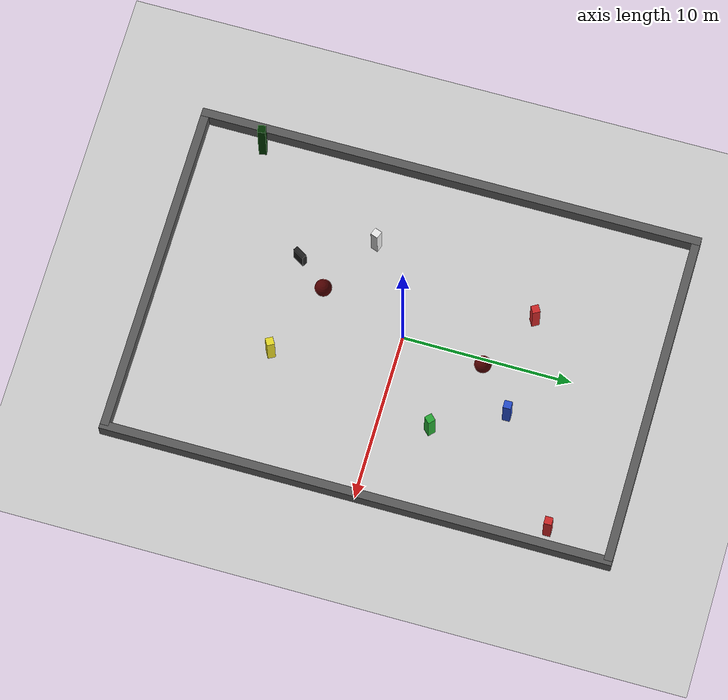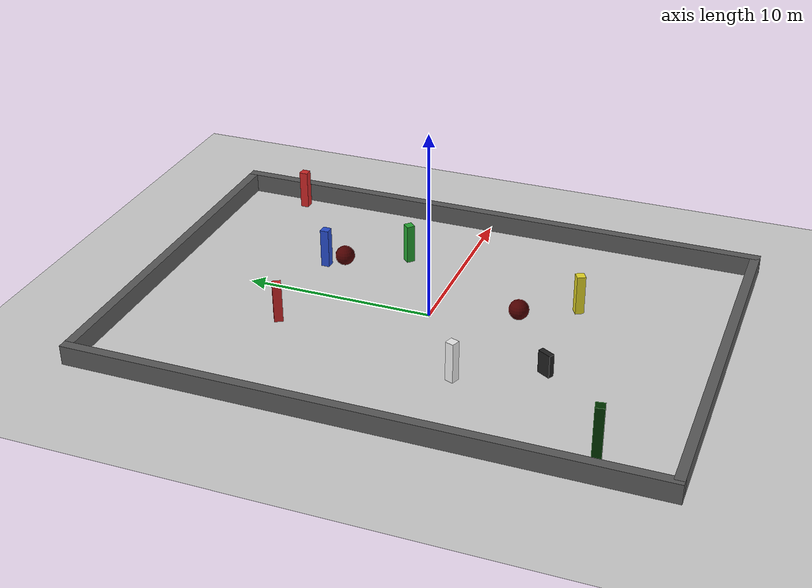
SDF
<?xml version="1.0"?>

<sdf version="1.6">
  <world name="custom_world">
    <physics name="1ms" type="ignored">
      <max_step_size>0.001</max_step_size>
      <real_time_factor>1.0</real_time_factor>
    </physics>

    <light type="directional" name="sun">
      <cast_shadows>true</cast_shadows>
      <pose>0 0 10 0 0 0</pose>
      <diffuse>0.8 0.8 0.8 1</diffuse>
      <specular>0.2 0.2 0.2 1</specular>
      <attenuation>
        <range>1000</range>
        <constant>0.9</constant>
        <linear>0.01</linear>
        <quadratic>0.001</quadratic>
      </attenuation>
      <direction>-0.5 0.1 -0.9</direction>
    </light>

    <model name="ground_plane">
      <static>true</static>
      <link name="link">
        <collision name="collision">
          <geometry>
            <plane>
              <normal>0 0 1</normal>
              <size>100 100</size>
            </plane>
          </geometry>
        </collision>
        <visual name="visual">
          <geometry>
            <plane>
              <normal>0 0 1</normal>
              <size>100 100</size>
            </plane>
          </geometry>
          <material>
            <ambient>0.8 0.8 0.8 1</ambient>
            <diffuse>0.8 0.8 0.8 1</diffuse>
            <specular>0.8 0.8 0.8 1</specular>
          </material>
        </visual>
      </link>
    </model>
<!-- modificato da noi -->

    <include>
      <uri>model://boundaries_outside</uri>
      <name>boundaries</name>
      <pose>0 0 0 0 0 0</pose>
    </include>

    <include>
        <uri>model://red_ball</uri>
        <name>ball0</name>
        <pose>1 5 2 0 0 0</pose>
    </include>

    <include>
        <uri>model://red_ball</uri>
        <name>ball1</name>
        <pose>-1 -5 2 0 0 0</pose>
    </include>

    <include>
        <uri>model://everblock_red</uri>
        <name>block1</name>
        <pose>-3 7 0 0 0 0.523598776</pose> <!-- ruotato yaw = 30 gradi -->
    </include>

    <include>
        <uri>model://everblock_blue</uri>
        <name>block2</name>
        <pose>3 7 0 0 0 0</pose> <!-- ruotato yaw = 0 gradi -->
    </include>

    <include>
        <uri>model://everblock_green</uri>
        <name>block3</name>
        <pose>5 3 0 0 0 0.785398163</pose> <!-- ruotato yaw = 45 gradi -->
    </include>

    <include>
        <uri>model://everblock_red</uri>
        <name>block4</name>
        <pose>9 11 0 0 0 4.71238898</pose><!-- ruotato yaw = 270 gradi -->
    </include>

    <include>
        <uri>model://everblock_small_black</uri>
        <name>block5</name>
        <pose>-3 -7 0 0 0 1.047197551</pose><!-- ruotato yaw = 60 gradi -->
    </include>

    <include>
        <uri>model://everblock_yellow</uri>
        <name>block6</name>
        <pose>3 -7 0 0 0 2.094395102</pose><!-- ruotato yaw = 120 gradi -->
    </include>

    <include>
        <uri>model://everblock_white</uri>
        <name>block7</name>
        <pose>-5 -3 0 0 0 4.363323130</pose><!-- ruotato yaw = 250 gradi -->
    </include>

    <include>
        <uri>model://everblock_high_green</uri>
        <name>block8</name>
        <pose>-9 -11 0 0 0 0.174532925</pose><!-- ruotato yaw = 10 gradi -->
    </include>

<!-- modificato da noi -->
  </world>
</sdf>

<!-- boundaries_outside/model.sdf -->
<sdf version="1.7">
  <model name="boundaries">

    <include>
      <uri>model://wall_big_long</uri>
      <name>boundary_up</name>
	  <pose>10 0 0 0 0 0</pose>
    </include>

    <include>
      <uri>model://wall_big_long</uri>
      <name>boundary_down</name>
      <pose>-10 0 0 0 0 0</pose>
    </include>

    <include>
      <uri>model://wall_big_short</uri>
      <name>boundary_left</name>
	  <pose>0 14.75 0 0 0 1.570796</pose>
    </include>

    <include>
      <uri>model://wall_big_short</uri>
      <name>boundary_right</name>
      <pose>0 -14.75 0 0 0 1.570796</pose>
    </include>

  </model>
</sdf>

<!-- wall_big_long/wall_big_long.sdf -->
<sdf version="1.7">

    <model name='wall'>
        <static>true</static>
        <pose>0 0 0 0 0 0</pose><!--pose relative to the world-->
        <link name='box'>
            <visual name='visual'>
                <geometry>
                    <box>
                        <size>0.5 30.0 2.0</size>
                    </box>
                </geometry>
                <!--let's add color to our link-->
                <material>
                    <ambient>0.35 0.35 0.35 1</ambient>
                    <diffuse>0.35 0.35 0.35 1</diffuse>
                    <specular>0.35 0.35 0.35 1</specular>
                </material>
            </visual>
            <collision name='collision'>
                <geometry>
                    <box>
                        <size>0.5 30.0 2.0</size>
                    </box>
                </geometry>
            </collision>
        </link>
    </model>

</sdf>

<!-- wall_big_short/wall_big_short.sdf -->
<sdf version="1.7">

    <model name='wall'>
        <static>true</static>
        <pose>0 0 0 0 0 0</pose><!--pose relative to the world-->
        <link name='box'>
            <visual name='visual'>
                <geometry>
                    <box>
                        <size>0.5 20.0 2.0</size>
                    </box>
                </geometry>
                <!--let's add color to our link-->
                <material>
                    <ambient>0.35 0.35 0.35 1</ambient>
                    <diffuse>0.35 0.35 0.35 1</diffuse>
                    <specular>0.35 0.35 0.35 1</specular>
                </material>
            </visual>
            <collision name='collision'>
                <geometry>
                    <box>
                        <size>0.5 20.0 2.0</size>
                    </box>
                </geometry>
            </collision>
        </link>
    </model>

</sdf>

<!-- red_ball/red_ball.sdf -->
<sdf version="1.7">
  <model name='red_ball'>
    <link name='link'>
      <pose>0 0 0 0 0 0</pose>
      <inertial>
        <mass>0.001</mass>
        <inertia>
          <ixx>0.0001</ixx>
          <iyy>0.0001</iyy>
          <izz>0.0001</izz>
        </inertia>
      </inertial>
      <visual name="ball_visual">
        <geometry>
          <sphere>
            <radius>0.5</radius>
          </sphere>
        </geometry>
        <material>
          <ambient>0.3 0 0 1</ambient>
          <diffuse>0.3 0 0 1</diffuse>
          <specular>0.8 0.8 0.8 1</specular>
        </material>
      </visual>
      <collision name="ball_collision">
        <geometry>
          <sphere>
            <radius>0.5</radius>
          </sphere>
        </geometry>
      </collision>
    </link>
  </model>
</sdf>
<!-- vim: set et fenc=utf-8 ff=unix sts=0 sw=2 ts=2 : -->

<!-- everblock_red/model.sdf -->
<sdf version="1.7">
  <model name="everblock_red">
    <static>true</static>
    <link name="block">
      <pose>0 0 1.0668 0 0 0</pose>
      <collision name="collision">
        <geometry>
          <box>
            <size>0.4572 0.4572 2.1336</size>
          </box>
        </geometry>
      </collision>
      <visual name="visual">
        <geometry>
          <mesh>
            <uri>model://everblock_red/meshes/block.dae</uri>
            <scale>0.4572 0.4572 2.1336</scale>
          </mesh>
	  	</geometry>
        <material>
          <script>
            <uri>model://everblock_red/materials/scripts</uri>
            <uri>model://everblock_red/materials/textures</uri>
            <name>BlockRed</name>
          </script>
        </material>
      </visual>
    </link>
  </model>
</sdf>

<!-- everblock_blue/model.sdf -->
<sdf version="1.7">
  <model name="everblock_blue">
    <static>true</static>
    <link name="block">
      <pose>0 0 1.0668 0 0 0</pose>
      <collision name="collision">
        <geometry>
          <box>
            <size>0.4572 0.4572 2.1336</size>
          </box>
        </geometry>
      </collision>
      <visual name="visual">
        <geometry>
          <mesh>
            <uri>model://everblock_blue/meshes/block.dae</uri>
            <scale>0.4572 0.4572 2.1336</scale>
          </mesh>
	  	</geometry>
        <material>
          <script>
            <uri>model://everblock_blue/materials/scripts</uri>
            <uri>model://everblock_blue/materials/textures</uri>
            <name>BlockBlue</name>
          </script>
        </material>
      </visual>
    </link>
  </model>
</sdf>

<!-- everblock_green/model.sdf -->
<sdf version="1.7">
  <model name="everblock_green">
    <static>true</static>
    <link name="block">
      <pose>0 0 1.0668 0 0 0</pose>
      <collision name="collision">
        <geometry>
          <box>
            <size>0.4572 0.4572 2.1336</size>
          </box>
        </geometry>
      </collision>
      <visual name="visual">
        <geometry>
          <mesh>
            <uri>model://everblock_green/meshes/block.dae</uri>
            <scale>0.4572 0.4572 2.1336</scale>
          </mesh>
	  	</geometry>
        <material>
          <script>
            <uri>model://everblock_green/materials/scripts</uri>
            <uri>model://everblock_green/materials/textures</uri>
            <name>BlockGreen</name>
          </script>
        </material>
      </visual>
    </link>
  </model>
</sdf>

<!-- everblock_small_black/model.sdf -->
<sdf version="1.7">
  <model name="everblock_small_black">
    <static>true</static>
    <link name="block">
      <pose>0 0 0.6096 0 0 0</pose>
      <collision name="collision">
        <geometry>
          <box>
            <size>0.762 0.3048 1.2192</size>
          </box>
        </geometry>
      </collision>
      <visual name="visual">
        <geometry>
          <mesh>
            <uri>model://everblock_small_black/meshes/block.dae</uri>
            <scale>0.762 0.3048 1.2192</scale>
          </mesh>
	  	</geometry>
        <material>
          <script>
            <uri>model://everblock_small_black/materials/scripts</uri>
            <uri>model://everblock_small_black/materials/textures</uri>
            <name>BlockSmallBlack</name>
          </script>
        </material>
      </visual>
    </link>
  </model>
</sdf>

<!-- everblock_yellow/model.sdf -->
<sdf version="1.7">
  <model name="everblock_yellow">
    <static>true</static>
    <link name="block">
      <pose>0 0 1.0668 0 0 0</pose>
      <collision name="collision">
        <geometry>
          <box>
            <size>0.4572 0.4572 2.1336</size>
          </box>
        </geometry>
      </collision>
      <visual name="visual">
        <geometry>
          <mesh>
            <uri>model://everblock_yellow/meshes/block.dae</uri>
            <scale>0.4572 0.4572 2.1336</scale>
          </mesh>
	  	</geometry>
        <material>
          <script>
            <uri>model://everblock_yellow/materials/scripts</uri>
            <uri>model://everblock_yellow/materials/textures</uri>
            <name>BlockYellow</name>
          </script>
        </material>
      </visual>
    </link>
  </model>
</sdf>

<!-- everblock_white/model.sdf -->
<sdf version="1.7">
  <model name="everblock_white">
    <static>true</static>
    <link name="block">
      <pose>0 0 1.0668 0 0 0</pose>
      <collision name="collision">
        <geometry>
          <box>
            <size>0.4572 0.4572 2.1336</size>
          </box>
        </geometry>
      </collision>
      <visual name="visual">
        <geometry>
          <mesh>
            <uri>model://everblock_white/meshes/block.dae</uri>
            <scale>0.4572 0.4572 2.1336</scale>
          </mesh>
	  	</geometry>
        <material>
          <script>
            <uri>model://everblock_white/materials/scripts</uri>
            <uri>model://everblock_white/materials/textures</uri>
            <name>BlockWhite</name>
          </script>
        </material>
      </visual>
    </link>
  </model>
</sdf>

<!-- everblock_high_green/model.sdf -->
<sdf version="1.7">
  <model name="everblock_high_green">
    <static>true</static>
    <link name="block">
      <pose>0 0 1.0668 0 0 0</pose>
      <collision name="collision">
        <geometry>
          <box>
            <size>0.5 0.5 4.0</size>
          </box>
        </geometry>
      </collision>
      <visual name="visual">
        <geometry>
          <mesh>
            <uri>model://everblock_high_green/meshes/everblock_green.dae</uri>
          </mesh>
        </geometry>
        <material>
          <diffuse>0 0.2 0 1</diffuse>
          <specular>0.8 0.8 0.8 1</specular>
          <pbr>
            <metal>
              <roughness_map>model://everblock_high_green/meshes/textures/everblock_green_roughness.png</roughness_map>
              <ambient_occlusion_map>model://everblock_high_green/meshes/textures/everblock_green_ao.png</ambient_occlusion_map>
              <normal_map>model://everblock_high_green/meshes/textures/everblock_green_normal.png</normal_map>
            </metal>
          </pbr>
        </material>
      </visual>
    </link>
  </model>
</sdf>
<!-- vim: set et fenc=utf-8 ff=unix sts=0 sw=2 ts=2 : -->
